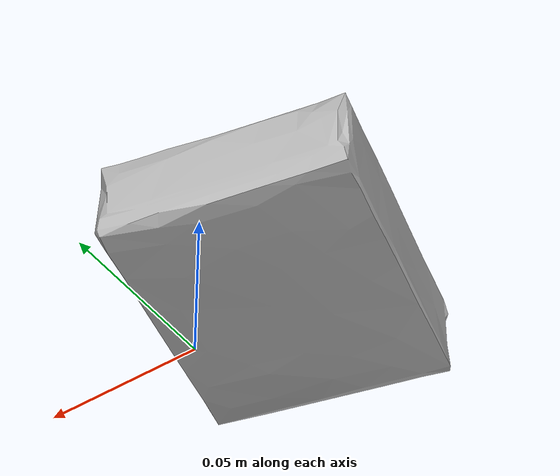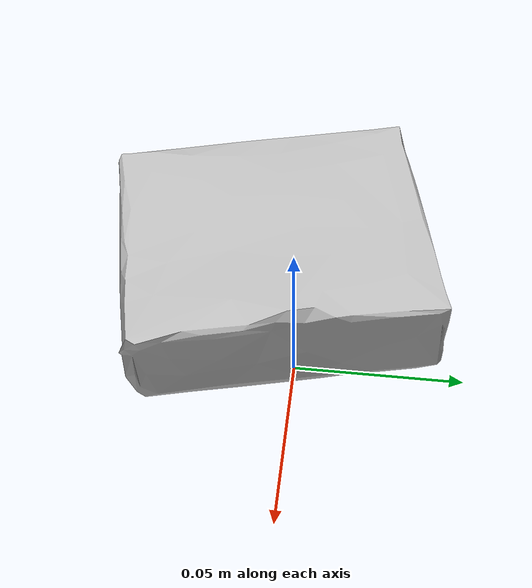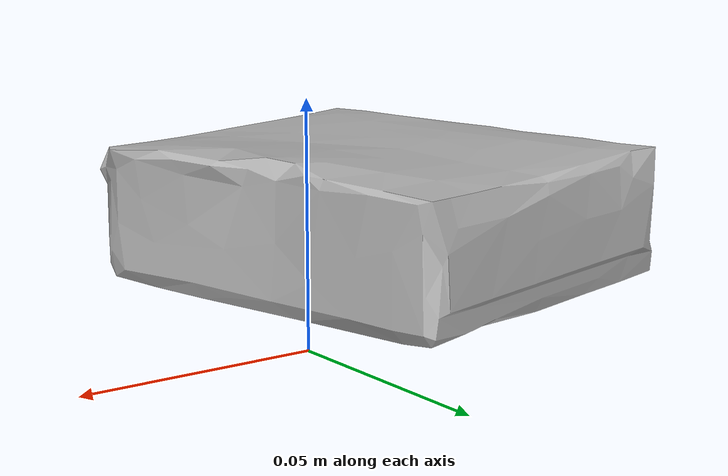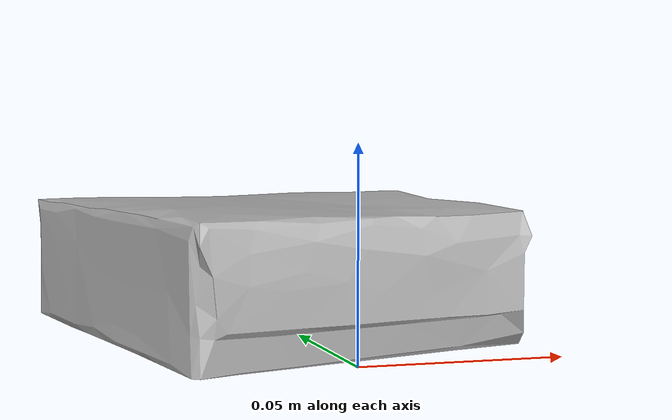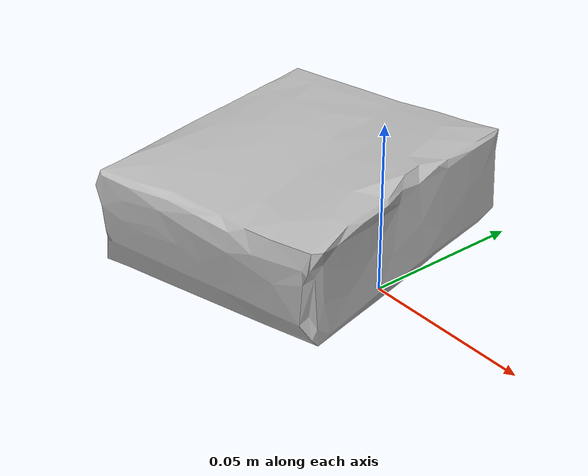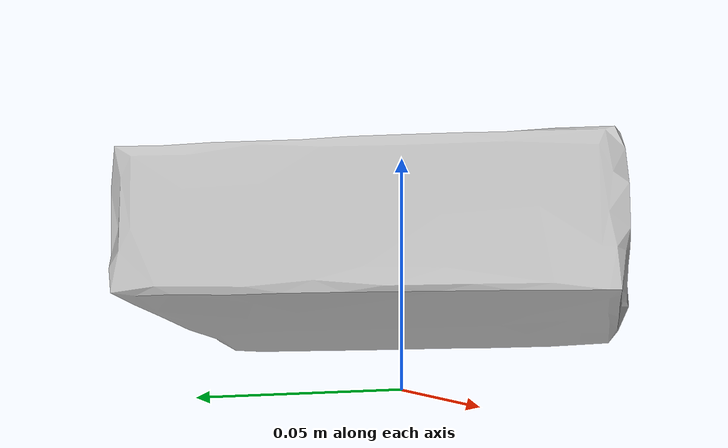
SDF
<?xml version="1.0"?>
<sdf version="1.6">
    <model name="gelatin">
        <pose>0 0 0.01 0 0 0</pose>
        <link name="link_00">
            <pose>0.0 0 0 0 0 0</pose>
            <visual name="visual_00">
                <geometry>
                    <mesh>
                        <uri>model://gelatin/textured.dae</uri>
                    </mesh>
                </geometry>
            </visual>
            <collision name="collision">
                <geometry>
                    <mesh>
                        <uri>model://gelatin/collision.dae</uri>
                    </mesh>
                </geometry>
                <surface>
                    <friction>
                        <ode>
                            <mu>100</mu>
                            <mu2>50</mu2>
                            <fdir1>0.0 0.0 0.0</fdir1>
                            <slip1>0.0</slip1>
                            <slip2>0.0</slip2>
                        </ode>
                    </friction>
                    <contact>
                        <ode>
                            <max_vel>0.1</max_vel>
                            <min_depth>0.001</min_depth>
                        </ode>
                    </contact>
                </surface>
                <max_contacts>4</max_contacts>
            </collision>
            <inertial>
                <pose> -0.023 -0.008 0.014 0 0 0</pose>
                <inertia>
                    <ixx>9.999999999999999e-03</ixx>
                    <ixy>-0.0</ixy>
                    <ixz>-0.0</ixz>
                    <iyy>9.999999999999999e-03</iyy>
                    <iyz>0.0</iyz>
                    <izz>1.9999999999999998e-02</izz>
                </inertia>
            </inertial>
        </link>
    </model>
</sdf>
